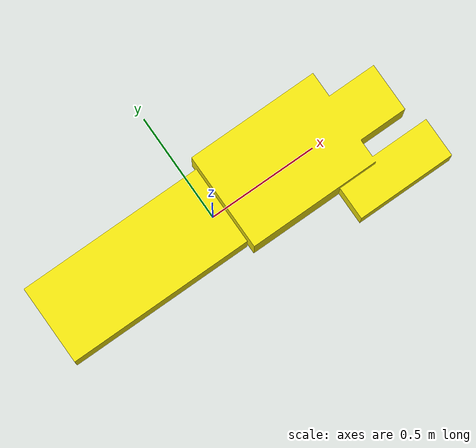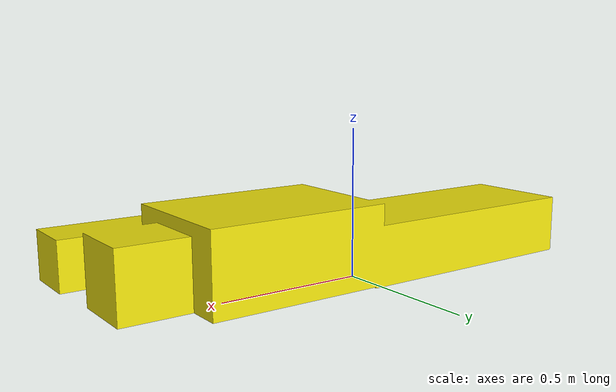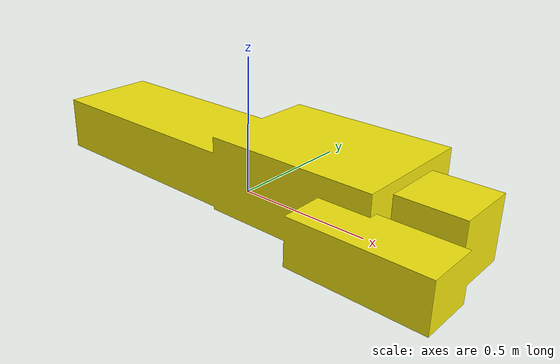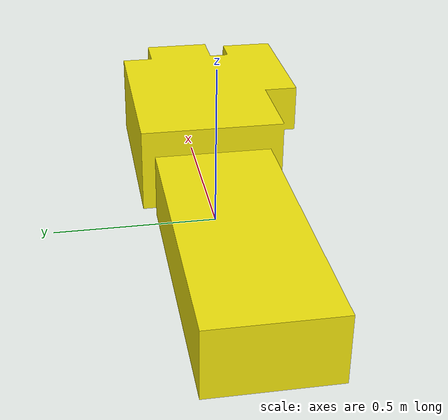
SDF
<?xml version="1.0" encoding="UTF-8"?>
<sdf version="1.9">
  <model name="human_prone_injured">
    <static>true</static>
    <link name="body_link">
      <!-- 3D Volumetric Humanoid Mesh with Photorealistic Texture -->
      <visual name="survivor_mesh">
        <pose>0 0 0 0 0 0</pose>
        <geometry>
          <mesh>
            <uri>model://human_prone_injured/meshes/prone_injured.obj</uri>
            <scale>1 1 1</scale>
          </mesh>
        </geometry>
        <material>
          <ambient>0.95 0.90 0.05 1.0</ambient>
          <diffuse>0.95 0.90 0.05 1.0</diffuse>
          <specular>0.1 0.1 0.1 1.0</specular>
        </material>
      </visual>

      <!-- Physical 3D Collision Volume -->
      <collision name="col">
        <pose>0.15 0 0.15 0 0 0</pose>
        <geometry><box><size>1.6 0.8 0.4</size></box></geometry>
      </collision>
    </link>
  </model>
</sdf>
